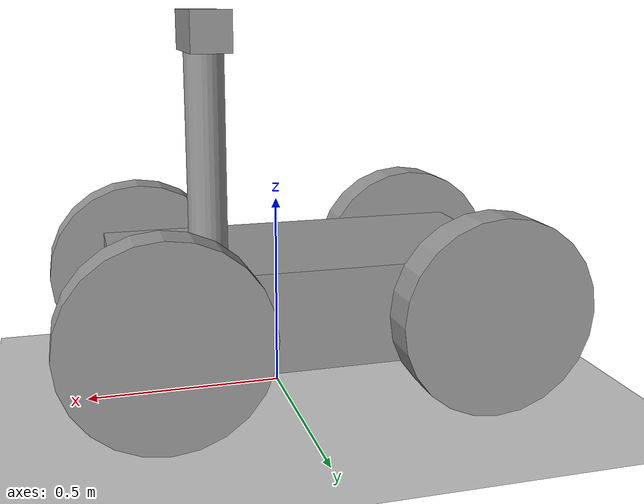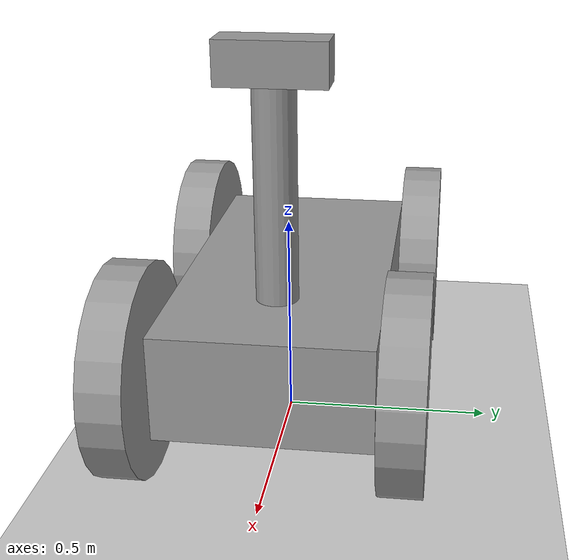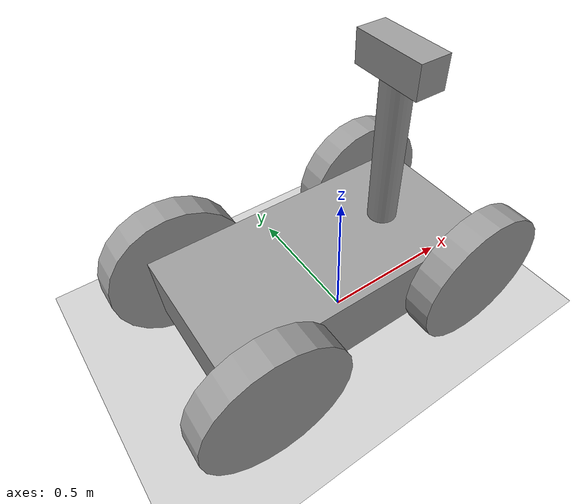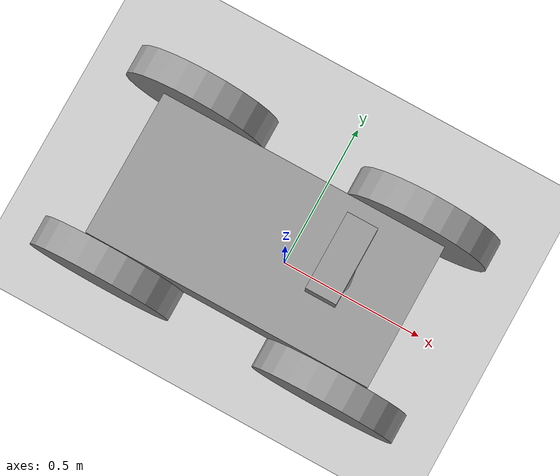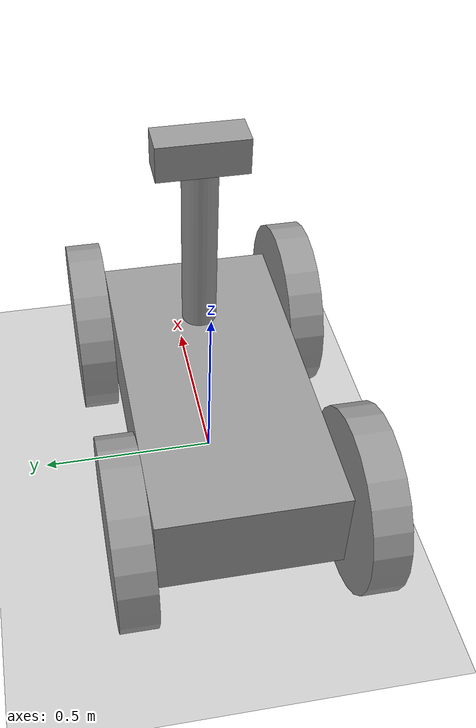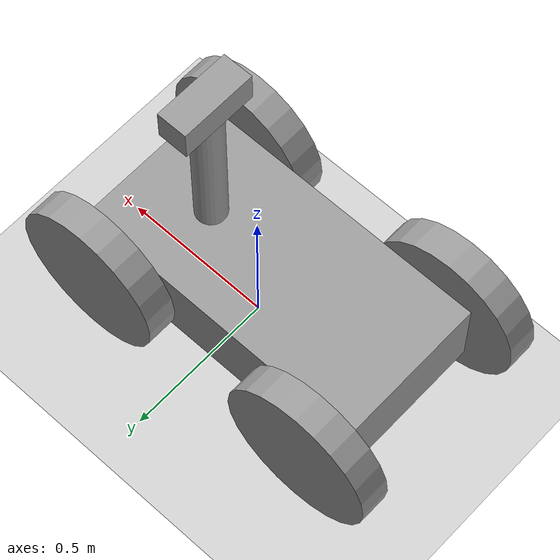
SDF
<sdf version="1.7">
	<world name="test_world">

		<plugin
			filename="ignition-gazebo-physics-system"
			name="ignition::gazebo::systems::Physics">
		</plugin>
		<plugin
			filename="ignition-gazebo-sensors-system"
			name="ignition::gazebo::systems::Sensors">
		<render_engine>ogre</render_engine>
		</plugin>
		<plugin
			filename="ignition-gazebo-user-commands-system"
			name="ignition::gazebo::systems::UserCommands">
		</plugin>
		<plugin
			filename="ignition-gazebo-scene-broadcaster-system"
			name="ignition::gazebo::systems::SceneBroadcaster">
		</plugin>

		<include>
			<uri>
			https://fuel.gazebosim.org/1.0/OpenRobotics/models/Sun
			</uri>
		</include>

		<include>
			<uri>../models/ground_plane</uri>
		</include>

        <include>
            <pose>0 0 0.4 0 0 0</pose>
            <uri>../models/project_robot_model</uri>
        </include>

	</world>
</sdf>

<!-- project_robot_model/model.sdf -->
<sdf version='1.7'>
  <model name='project_robot_model'>
    <link name='chassis'>
      <inertial>
        <mass>1</mass>
        <inertia>
          <ixx>0.166667</ixx>
          <ixy>0</ixy>
          <ixz>0</ixz>
          <iyy>0.166667</iyy>
          <iyz>0</iyz>
          <izz>0.166667</izz>
        </inertia>
        <pose>0 0 0 0 -0 0</pose>
      </inertial>
      <pose>-0.071429 0 -0.15 0 -0 0</pose>
      <gravity>1</gravity>
      <self_collide>0</self_collide>
      <kinematic>0</kinematic>
      <enable_wind>0</enable_wind>
      <visual name='visual'>
        <pose>0 0 0 0 -0 0</pose>
        <geometry>
          <box>
            <size>1 0.5 0.25</size>
          </box>
        </geometry>
        <material>
          <lighting>1</lighting>
          <script>
            <uri>file://media/materials/scripts/gazebo.material</uri>
            <name>Gazebo/Grey</name>
          </script>
          <shader type='pixel'>
            <normal_map>__default__</normal_map>
          </shader>
          <ambient>0.3 0.3 0.3 1</ambient>
          <diffuse>0.7 0.7 0.7 1</diffuse>
          <specular>0.01 0.01 0.01 1</specular>
          <emissive>0 0 0 1</emissive>
        </material>
        <transparency>0</transparency>
        <cast_shadows>1</cast_shadows>
      </visual>
      <collision name='collision'>
        <laser_retro>0</laser_retro>
        <max_contacts>10</max_contacts>
        <pose>0 0 0 0 -0 0</pose>
        <geometry>
          <box>
            <size>1 0.5 0.25</size>
          </box>
        </geometry>
        <surface>
          <friction>
            <ode>
              <mu>1</mu>
              <mu2>1</mu2>
              <fdir1>0 0 0</fdir1>
              <slip1>0</slip1>
              <slip2>0</slip2>
            </ode>
            <torsional>
              <coefficient>1</coefficient>
              <patch_radius>0</patch_radius>
              <surface_radius>0</surface_radius>
              <use_patch_radius>1</use_patch_radius>
              <ode>
                <slip>0</slip>
              </ode>
            </torsional>
          </friction>
          <bounce>
            <restitution_coefficient>0</restitution_coefficient>
            <threshold>1e+06</threshold>
          </bounce>
          <contact>
            <collide_without_contact>0</collide_without_contact>
            <collide_without_contact_bitmask>1</collide_without_contact_bitmask>
            <collide_bitmask>1</collide_bitmask>
            <ode>
              <soft_cfm>0</soft_cfm>
              <soft_erp>0.2</soft_erp>
              <kp>1e+13</kp>
              <kd>1</kd>
              <max_vel>0.01</max_vel>
              <min_depth>0</min_depth>
            </ode>
            <bullet>
              <split_impulse>1</split_impulse>
              <split_impulse_penetration_threshold>-0.01</split_impulse_penetration_threshold>
              <soft_cfm>0</soft_cfm>
              <soft_erp>0.2</soft_erp>
              <kp>1e+13</kp>
              <kd>1</kd>
            </bullet>
          </contact>
        </surface>
      </collision>
    </link>
    <link name='FR_wheel_link'>
      <inertial>
        <mass>1</mass>
        <inertia>
          <ixx>0.145833</ixx>
          <ixy>0</ixy>
          <ixz>0</ixz>
          <iyy>0.145833</iyy>
          <iyz>0</iyz>
          <izz>0.125</izz>
        </inertia>
        <pose>0 0 0 0 -0 0</pose>
      </inertial>
      <pose>0.328571 -0.31 -0.15 1.57079 -0 0</pose>
      <gravity>1</gravity>
      <self_collide>0</self_collide>
      <kinematic>0</kinematic>
      <enable_wind>0</enable_wind>
      <visual name='visual'>
        <pose>0 0 0 0 -0 0</pose>
        <geometry>
          <cylinder>
            <radius>0.25</radius>
            <length>0.1</length>
          </cylinder>
        </geometry>
        <material>
          <lighting>1</lighting>
          <script>
            <uri>file://media/materials/scripts/gazebo.material</uri>
            <name>Gazebo/Grey</name>
          </script>
          <shader type='pixel'>
            <normal_map>__default__</normal_map>
          </shader>
          <ambient>0.3 0.3 0.3 1</ambient>
          <diffuse>0.7 0.7 0.7 1</diffuse>
          <specular>0.01 0.01 0.01 1</specular>
          <emissive>0 0 0 1</emissive>
        </material>
        <transparency>0</transparency>
        <cast_shadows>1</cast_shadows>
      </visual>
      <collision name='collision'>
        <laser_retro>0</laser_retro>
        <max_contacts>10</max_contacts>
        <pose>0 0 0 0 -0 0</pose>
        <geometry>
          <cylinder>
            <radius>0.25</radius>
            <length>0.1</length>
          </cylinder>
        </geometry>
        <surface>
          <friction>
            <ode>
              <mu>1</mu>
              <mu2>1</mu2>
              <fdir1>0 0 0</fdir1>
              <slip1>0</slip1>
              <slip2>0</slip2>
            </ode>
            <torsional>
              <coefficient>1</coefficient>
              <patch_radius>0</patch_radius>
              <surface_radius>0</surface_radius>
              <use_patch_radius>1</use_patch_radius>
              <ode>
                <slip>0</slip>
              </ode>
            </torsional>
          </friction>
          <bounce>
            <restitution_coefficient>0</restitution_coefficient>
            <threshold>1e+06</threshold>
          </bounce>
          <contact>
            <collide_without_contact>0</collide_without_contact>
            <collide_without_contact_bitmask>1</collide_without_contact_bitmask>
            <collide_bitmask>1</collide_bitmask>
            <ode>
              <soft_cfm>0</soft_cfm>
              <soft_erp>0.2</soft_erp>
              <kp>1e+13</kp>
              <kd>1</kd>
              <max_vel>0.01</max_vel>
              <min_depth>0</min_depth>
            </ode>
            <bullet>
              <split_impulse>1</split_impulse>
              <split_impulse_penetration_threshold>-0.01</split_impulse_penetration_threshold>
              <soft_cfm>0</soft_cfm>
              <soft_erp>0.2</soft_erp>
              <kp>1e+13</kp>
              <kd>1</kd>
            </bullet>
          </contact>
        </surface>
      </collision>
    </link>
    <link name='FL_wheel_link'>
      <inertial>
        <mass>1</mass>
        <inertia>
          <ixx>0.145833</ixx>
          <ixy>0</ixy>
          <ixz>0</ixz>
          <iyy>0.145833</iyy>
          <iyz>0</iyz>
          <izz>0.125</izz>
        </inertia>
        <pose>0 0 0 0 -0 0</pose>
      </inertial>
      <pose>0.328571 0.31 -0.15 1.57079 -0 0</pose>
      <gravity>1</gravity>
      <self_collide>0</self_collide>
      <kinematic>0</kinematic>
      <enable_wind>0</enable_wind>
      <visual name='visual'>
        <pose>0 0 0 0 -0 0</pose>
        <geometry>
          <cylinder>
            <radius>0.25</radius>
            <length>0.1</length>
          </cylinder>
        </geometry>
        <material>
          <lighting>1</lighting>
          <script>
            <uri>file://media/materials/scripts/gazebo.material</uri>
            <name>Gazebo/Grey</name>
          </script>
          <shader type='pixel'>
            <normal_map>__default__</normal_map>
          </shader>
          <ambient>0.3 0.3 0.3 1</ambient>
          <diffuse>0.7 0.7 0.7 1</diffuse>
          <specular>0.01 0.01 0.01 1</specular>
          <emissive>0 0 0 1</emissive>
        </material>
        <transparency>0</transparency>
        <cast_shadows>1</cast_shadows>
      </visual>
      <collision name='collision'>
        <laser_retro>0</laser_retro>
        <max_contacts>10</max_contacts>
        <pose>0 0 0 0 -0 0</pose>
        <geometry>
          <cylinder>
            <radius>0.25</radius>
            <length>0.1</length>
          </cylinder>
        </geometry>
        <surface>
          <friction>
            <ode>
              <mu>1</mu>
              <mu2>1</mu2>
              <fdir1>0 0 0</fdir1>
              <slip1>0</slip1>
              <slip2>0</slip2>
            </ode>
            <torsional>
              <coefficient>1</coefficient>
              <patch_radius>0</patch_radius>
              <surface_radius>0</surface_radius>
              <use_patch_radius>1</use_patch_radius>
              <ode>
                <slip>0</slip>
              </ode>
            </torsional>
          </friction>
          <bounce>
            <restitution_coefficient>0</restitution_coefficient>
            <threshold>1e+06</threshold>
          </bounce>
          <contact>
            <collide_without_contact>0</collide_without_contact>
            <collide_without_contact_bitmask>1</collide_without_contact_bitmask>
            <collide_bitmask>1</collide_bitmask>
            <ode>
              <soft_cfm>0</soft_cfm>
              <soft_erp>0.2</soft_erp>
              <kp>1e+13</kp>
              <kd>1</kd>
              <max_vel>0.01</max_vel>
              <min_depth>0</min_depth>
            </ode>
            <bullet>
              <split_impulse>1</split_impulse>
              <split_impulse_penetration_threshold>-0.01</split_impulse_penetration_threshold>
              <soft_cfm>0</soft_cfm>
              <soft_erp>0.2</soft_erp>
              <kp>1e+13</kp>
              <kd>1</kd>
            </bullet>
          </contact>
        </surface>
      </collision>
    </link>
    <link name='BL_wheel_link'>
      <inertial>
        <mass>1</mass>
        <inertia>
          <ixx>0.145833</ixx>
          <ixy>0</ixy>
          <ixz>0</ixz>
          <iyy>0.145833</iyy>
          <iyz>0</iyz>
          <izz>0.125</izz>
        </inertia>
        <pose>0 0 0 0 -0 0</pose>
      </inertial>
      <pose>-0.471429 0.31 -0.15 1.57079 -0 0</pose>
      <gravity>1</gravity>
      <self_collide>0</self_collide>
      <kinematic>0</kinematic>
      <enable_wind>0</enable_wind>
      <visual name='visual'>
        <pose>0 0 0 0 -0 0</pose>
        <geometry>
          <cylinder>
            <radius>0.25</radius>
            <length>0.1</length>
          </cylinder>
        </geometry>
        <material>
          <lighting>1</lighting>
          <script>
            <uri>file://media/materials/scripts/gazebo.material</uri>
            <name>Gazebo/Grey</name>
          </script>
          <shader type='pixel'>
            <normal_map>__default__</normal_map>
          </shader>
          <ambient>0.3 0.3 0.3 1</ambient>
          <diffuse>0.7 0.7 0.7 1</diffuse>
          <specular>0.01 0.01 0.01 1</specular>
          <emissive>0 0 0 1</emissive>
        </material>
        <transparency>0</transparency>
        <cast_shadows>1</cast_shadows>
      </visual>
      <collision name='collision'>
        <laser_retro>0</laser_retro>
        <max_contacts>10</max_contacts>
        <pose>0 0 0 0 -0 0</pose>
        <geometry>
          <cylinder>
            <radius>0.25</radius>
            <length>0.1</length>
          </cylinder>
        </geometry>
        <surface>
          <friction>
            <ode>
              <mu>0.1</mu>
              <mu2>0.1</mu2>
              <fdir1>0 0 0</fdir1>
              <slip1>0</slip1>
              <slip2>0</slip2>
            </ode>
            <torsional>
              <coefficient>1</coefficient>
              <patch_radius>0</patch_radius>
              <surface_radius>0</surface_radius>
              <use_patch_radius>1</use_patch_radius>
              <ode>
                <slip>0</slip>
              </ode>
            </torsional>
          </friction>
          <bounce>
            <restitution_coefficient>0</restitution_coefficient>
            <threshold>1e+06</threshold>
          </bounce>
          <contact>
            <collide_without_contact>0</collide_without_contact>
            <collide_without_contact_bitmask>1</collide_without_contact_bitmask>
            <collide_bitmask>1</collide_bitmask>
            <ode>
              <soft_cfm>0</soft_cfm>
              <soft_erp>0.2</soft_erp>
              <kp>1e+13</kp>
              <kd>1</kd>
              <max_vel>0.01</max_vel>
              <min_depth>0</min_depth>
            </ode>
            <bullet>
              <split_impulse>1</split_impulse>
              <split_impulse_penetration_threshold>-0.01</split_impulse_penetration_threshold>
              <soft_cfm>0</soft_cfm>
              <soft_erp>0.2</soft_erp>
              <kp>1e+13</kp>
              <kd>1</kd>
            </bullet>
          </contact>
        </surface>
      </collision>
    </link>
    <link name='BR_wheel_link'>
      <inertial>
        <mass>1</mass>
        <inertia>
          <ixx>0.145833</ixx>
          <ixy>0</ixy>
          <ixz>0</ixz>
          <iyy>0.145833</iyy>
          <iyz>0</iyz>
          <izz>0.125</izz>
        </inertia>
        <pose>0 0 0 0 -0 0</pose>
      </inertial>
      <pose>-0.471429 -0.31 -0.15 1.57079 -0 0</pose>
      <gravity>1</gravity>
      <self_collide>0</self_collide>
      <kinematic>0</kinematic>
      <enable_wind>0</enable_wind>
      <visual name='visual'>
        <pose>0 0 0 0 -0 0</pose>
        <geometry>
          <cylinder>
            <radius>0.25</radius>
            <length>0.1</length>
          </cylinder>
        </geometry>
        <material>
          <lighting>1</lighting>
          <script>
            <uri>file://media/materials/scripts/gazebo.material</uri>
            <name>Gazebo/Grey</name>
          </script>
          <shader type='pixel'>
            <normal_map>__default__</normal_map>
          </shader>
          <ambient>0.3 0.3 0.3 1</ambient>
          <diffuse>0.7 0.7 0.7 1</diffuse>
          <specular>0.01 0.01 0.01 1</specular>
          <emissive>0 0 0 1</emissive>
        </material>
        <transparency>0</transparency>
        <cast_shadows>1</cast_shadows>
      </visual>
      <collision name='collision'>
        <laser_retro>0</laser_retro>
        <max_contacts>10</max_contacts>
        <pose>0 0 0 0 -0 0</pose>
        <geometry>
          <cylinder>
            <radius>0.25</radius>
            <length>0.1</length>
          </cylinder>
        </geometry>
        <surface>
          <friction>
            <ode>
              <mu>0.1</mu>
              <mu2>0.1</mu2>
              <fdir1>0 0 0</fdir1>
              <slip1>0</slip1>
              <slip2>0</slip2>
            </ode>
            <torsional>
              <coefficient>1</coefficient>
              <patch_radius>0</patch_radius>
              <surface_radius>0</surface_radius>
              <use_patch_radius>1</use_patch_radius>
              <ode>
                <slip>0</slip>
              </ode>
            </torsional>
          </friction>
          <bounce>
            <restitution_coefficient>0</restitution_coefficient>
            <threshold>1e+06</threshold>
          </bounce>
          <contact>
            <collide_without_contact>0</collide_without_contact>
            <collide_without_contact_bitmask>1</collide_without_contact_bitmask>
            <collide_bitmask>1</collide_bitmask>
            <ode>
              <soft_cfm>0</soft_cfm>
              <soft_erp>0.2</soft_erp>
              <kp>1e+13</kp>
              <kd>1</kd>
              <max_vel>0.01</max_vel>
              <min_depth>0</min_depth>
            </ode>
            <bullet>
              <split_impulse>1</split_impulse>
              <split_impulse_penetration_threshold>-0.01</split_impulse_penetration_threshold>
              <soft_cfm>0</soft_cfm>
              <soft_erp>0.2</soft_erp>
              <kp>1e+13</kp>
              <kd>1</kd>
            </bullet>
          </contact>
        </surface>
      </collision>
    </link>
    <link name='camera_rod_link'>
      <inertial>
        <mass>1</mass>
        <inertia>
          <ixx>0.145833</ixx>
          <ixy>0</ixy>
          <ixz>0</ixz>
          <iyy>0.145833</iyy>
          <iyz>0</iyz>
          <izz>0.125</izz>
        </inertia>
        <pose>0 0 0 0 -0 0</pose>
      </inertial>
      <pose>0.178571 0 0.225 0 -0 0</pose>
      <gravity>1</gravity>
      <self_collide>0</self_collide>
      <kinematic>0</kinematic>
      <enable_wind>0</enable_wind>
      <visual name='visual'>
        <pose>0 0 0 0 -0 0</pose>
        <geometry>
          <cylinder>
            <radius>0.05</radius>
            <length>0.5</length>
          </cylinder>
        </geometry>
        <material>
          <lighting>1</lighting>
          <script>
            <uri>file://media/materials/scripts/gazebo.material</uri>
            <name>Gazebo/Grey</name>
          </script>
          <shader type='pixel'>
            <normal_map>__default__</normal_map>
          </shader>
          <ambient>0.3 0.3 0.3 1</ambient>
          <diffuse>0.7 0.7 0.7 1</diffuse>
          <specular>0.01 0.01 0.01 1</specular>
          <emissive>0 0 0 1</emissive>
        </material>
        <transparency>0</transparency>
        <cast_shadows>1</cast_shadows>
      </visual>
      <collision name='collision'>
        <laser_retro>0</laser_retro>
        <max_contacts>10</max_contacts>
        <pose>0 0 0 0 -0 0</pose>
        <geometry>
          <cylinder>
            <radius>0.05</radius>
            <length>0.5</length>
          </cylinder>
        </geometry>
        <surface>
          <friction>
            <ode>
              <mu>1</mu>
              <mu2>1</mu2>
              <fdir1>0 0 0</fdir1>
              <slip1>0</slip1>
              <slip2>0</slip2>
            </ode>
            <torsional>
              <coefficient>1</coefficient>
              <patch_radius>0</patch_radius>
              <surface_radius>0</surface_radius>
              <use_patch_radius>1</use_patch_radius>
              <ode>
                <slip>0</slip>
              </ode>
            </torsional>
          </friction>
          <bounce>
            <restitution_coefficient>0</restitution_coefficient>
            <threshold>1e+06</threshold>
          </bounce>
          <contact>
            <collide_without_contact>0</collide_without_contact>
            <collide_without_contact_bitmask>1</collide_without_contact_bitmask>
            <collide_bitmask>1</collide_bitmask>
            <ode>
              <soft_cfm>0</soft_cfm>
              <soft_erp>0.2</soft_erp>
              <kp>1e+13</kp>
              <kd>1</kd>
              <max_vel>0.01</max_vel>
              <min_depth>0</min_depth>
            </ode>
            <bullet>
              <split_impulse>1</split_impulse>
              <split_impulse_penetration_threshold>-0.01</split_impulse_penetration_threshold>
              <soft_cfm>0</soft_cfm>
              <soft_erp>0.2</soft_erp>
              <kp>1e+13</kp>
              <kd>1</kd>
            </bullet>
          </contact>
        </surface>
      </collision>
    </link>
    <link name='camera_link'>
      <inertial>
        <mass>1</mass>
        <inertia>
          <ixx>0.166667</ixx>
          <ixy>0</ixy>
          <ixz>0</ixz>
          <iyy>0.166667</iyy>
          <iyz>0</iyz>
          <izz>0.166667</izz>
        </inertia>
        <pose>0 0 0 0 -0 0</pose>
      </inertial>
      <pose>0.178571 0 0.525 0 -0 0</pose>
      <gravity>1</gravity>
      <self_collide>0</self_collide>
      <kinematic>0</kinematic>
      <enable_wind>0</enable_wind>
      <visual name='visual'>
        <pose>0 0 0 0 -0 0</pose>
        <geometry>
          <box>
            <size>0.1 0.25 0.1</size>
          </box>
        </geometry>
        <material>
          <lighting>1</lighting>
          <script>
            <uri>file://media/materials/scripts/gazebo.material</uri>
            <name>Gazebo/Grey</name>
          </script>
          <shader type='pixel'>
            <normal_map>__default__</normal_map>
          </shader>
          <ambient>0.3 0.3 0.3 1</ambient>
          <diffuse>0.7 0.7 0.7 1</diffuse>
          <specular>0.01 0.01 0.01 1</specular>
          <emissive>0 0 0 1</emissive>
        </material>
        <transparency>0</transparency>
        <cast_shadows>1</cast_shadows>
      </visual>
      <collision name='collision'>
        <laser_retro>0</laser_retro>
        <max_contacts>10</max_contacts>
        <pose>0 0 0 0 -0 0</pose>
        <geometry>
          <box>
            <size>0.1 0.25 0.1</size>
          </box>
        </geometry>
        <surface>
          <friction>
            <ode>
              <mu>1</mu>
              <mu2>1</mu2>
              <fdir1>0 0 0</fdir1>
              <slip1>0</slip1>
              <slip2>0</slip2>
            </ode>
            <torsional>
              <coefficient>1</coefficient>
              <patch_radius>0</patch_radius>
              <surface_radius>0</surface_radius>
              <use_patch_radius>1</use_patch_radius>
              <ode>
                <slip>0</slip>
              </ode>
            </torsional>
          </friction>
          <bounce>
            <restitution_coefficient>0</restitution_coefficient>
            <threshold>1e+06</threshold>
          </bounce>
          <contact>
            <collide_without_contact>0</collide_without_contact>
            <collide_without_contact_bitmask>1</collide_without_contact_bitmask>
            <collide_bitmask>1</collide_bitmask>
            <ode>
              <soft_cfm>0</soft_cfm>
              <soft_erp>0.2</soft_erp>
              <kp>1e+13</kp>
              <kd>1</kd>
              <max_vel>0.01</max_vel>
              <min_depth>0</min_depth>
            </ode>
            <bullet>
              <split_impulse>1</split_impulse>
              <split_impulse_penetration_threshold>-0.01</split_impulse_penetration_threshold>
              <soft_cfm>0</soft_cfm>
              <soft_erp>0.2</soft_erp>
              <kp>1e+13</kp>
              <kd>1</kd>
            </bullet>
          </contact>
        </surface>
      </collision>
      <sensor name="camera" type="camera">
				<camera>
				  <horizontal_fov>1.047</horizontal_fov>
				  <image>
					<width>640</width>
					<height>480</height>
				  </image>
				  <clip>
					<near>0.1</near>
					<far>100</far>
				  </clip>
				</camera>
				<always_on>1</always_on>
				<update_rate>30</update_rate>
				<visualize>true</visualize>
				<topic>camera</topic>
			  </sensor>
    </link>
    <joint name='FL_wheel_joint' type='revolute'>
      <parent>chassis</parent>
      <child>FL_wheel_link</child>
      <pose>0 0 0 0 -0 0</pose>
      <axis>
        <xyz>0 0 -1</xyz>
        <limit>
          <lower>-1.79769e+308</lower>
          <upper>1.79769e+308</upper>
          <effort>-1</effort>
          <velocity>-1</velocity>
        </limit>
        <dynamics>
          <spring_reference>0</spring_reference>
          <spring_stiffness>0</spring_stiffness>
          <damping>0</damping>
        </dynamics>
      </axis>
      <physics>
        <ode>
          <limit>
            <cfm>0</cfm>
            <erp>0.2</erp>
          </limit>
          <suspension>
            <cfm>0</cfm>
            <erp>0.2</erp>
          </suspension>
        </ode>
      </physics>
    </joint>
    <joint name='FR_wheel_joint' type='revolute'>
      <parent>chassis</parent>
      <child>FR_wheel_link</child>
      <pose>0 0 0 0 -0 0</pose>
      <axis>
        <xyz>0 0 -1</xyz>
        <limit>
          <lower>-1.79769e+308</lower>
          <upper>1.79769e+308</upper>
          <effort>-1</effort>
          <velocity>-1</velocity>
        </limit>
        <dynamics>
          <spring_reference>0</spring_reference>
          <spring_stiffness>0</spring_stiffness>
          <damping>0</damping>
        </dynamics>
      </axis>
      <physics>
        <ode>
          <limit>
            <cfm>0</cfm>
            <erp>0.2</erp>
          </limit>
          <suspension>
            <cfm>0</cfm>
            <erp>0.2</erp>
          </suspension>
        </ode>
      </physics>
    </joint>
    <joint name='chassis_JOINT_2' type='revolute'>
      <parent>chassis</parent>
      <child>BL_wheel_link</child>
      <pose>0 0 0 0 -0 0</pose>
      <axis>
        <xyz>0 0 1</xyz>
        <limit>
          <lower>-1.79769e+308</lower>
          <upper>1.79769e+308</upper>
          <effort>-1</effort>
          <velocity>-1</velocity>
        </limit>
        <dynamics>
          <spring_reference>0</spring_reference>
          <spring_stiffness>0</spring_stiffness>
          <damping>0</damping>
        </dynamics>
      </axis>
      <physics>
        <ode>
          <limit>
            <cfm>0</cfm>
            <erp>0.2</erp>
          </limit>
          <suspension>
            <cfm>0</cfm>
            <erp>0.2</erp>
          </suspension>
        </ode>
      </physics>
    </joint>
    <joint name='chassis_JOINT_3' type='revolute'>
      <parent>chassis</parent>
      <child>BR_wheel_link</child>
      <pose>0 0 0 0 -0 0</pose>
      <axis>
        <xyz>0 0 1</xyz>
        <limit>
          <lower>-1.79769e+308</lower>
          <upper>1.79769e+308</upper>
          <effort>-1</effort>
          <velocity>-1</velocity>
        </limit>
        <dynamics>
          <spring_reference>0</spring_reference>
          <spring_stiffness>0</spring_stiffness>
          <damping>0</damping>
        </dynamics>
      </axis>
      <physics>
        <ode>
          <limit>
            <cfm>0</cfm>
            <erp>0.2</erp>
          </limit>
          <suspension>
            <cfm>0</cfm>
            <erp>0.2</erp>
          </suspension>
        </ode>
      </physics>
    </joint>
    <joint name='camera_rod_joint' type='revolute'>
      <parent>chassis</parent>
      <child>camera_rod_link</child>
      <pose>0 0 0 0 -0 0</pose>
      <axis>
        <xyz>0 0 1</xyz>
        <limit>
          <lower>-1.79769e+308</lower>
          <upper>1.79769e+308</upper>
          <effort>-1</effort>
          <velocity>-1</velocity>
        </limit>
        <dynamics>
          <spring_reference>0</spring_reference>
          <spring_stiffness>0</spring_stiffness>
          <damping>0.6</damping>
        </dynamics>
      </axis>
      <physics>
        <ode>
          <limit>
            <cfm>0</cfm>
            <erp>0.2</erp>
          </limit>
          <suspension>
            <cfm>0</cfm>
            <erp>0.2</erp>
          </suspension>
        </ode>
      </physics>
    </joint>
    <joint name='camera_rod_link_JOINT_6' type='fixed'>
      <parent>camera_rod_link</parent>
      <child>camera_link</child>
      <pose>0 0 0 0 -0 0</pose>
      <physics>
        <ode>
          <limit>
            <cfm>0</cfm>
            <erp>0.2</erp>
          </limit>
          <suspension>
            <cfm>0</cfm>
            <erp>0.2</erp>
          </suspension>
        </ode>
      </physics>
    </joint>
    <static>0</static>
    <allow_auto_disable>1</allow_auto_disable>

    <plugin
        filename="ignition-gazebo-diff-drive-system"
        name="ignition::gazebo::systems::DiffDrive">
        <left_joint>FL_wheel_joint</left_joint>
        <right_joint>FR_wheel_joint</right_joint>
        <wheel_separation>0.62</wheel_separation>
        <wheel_radius>0.25</wheel_radius>
        <max_linear_acceleration>1</max_linear_acceleration>
        <min_linear_acceleration>-1</min_linear_acceleration>
        <max_angular_acceleration>2</max_angular_acceleration>
        <min_angular_acceleration>-2</min_angular_acceleration>
        <max_linear_velocity>0.5</max_linear_velocity>
        <min_linear_velocity>-0.5</min_linear_velocity>
        <max_angular_velocity>1</max_angular_velocity>
        <min_angular_velocity>-1</min_angular_velocity>
        <topic>/cmd_vel</topic>
      </plugin>

      <plugin
        filename="ignition-gazebo-joint-position-controller-system"
        name="ignition::gazebo::systems::JointPositionController">
        <joint_name>camera_rod_joint</joint_name>
        <topic>camera_rod_pos_cmd</topic>
        <p_gain>1</p_gain>
        <i_gain>0.1</i_gain>
        <d_gain>0.01</d_gain>
        <i_max>1</i_max>
        <i_min>-1</i_min>
        <cmd_max>1000</cmd_max>
        <cmd_min>-1000</cmd_min>
      </plugin>

      <plugin
        filename="ignition-gazebo-joint-position-controller-system"
        name="gz::sim::systems::JointPositionController">
        <joint_name>camera_rod_joint</joint_name>
        <topic>camera_rod_pos_cmd</topic>
        <p_gain>1</p_gain>
        <i_gain>0.1</i_gain>
        <d_gain>0.01</d_gain>
        <i_max>1</i_max>
        <i_min>-1</i_min>
        <cmd_max>1000</cmd_max>
        <cmd_min>-1000</cmd_min>
      </plugin>

  </model>
</sdf>
